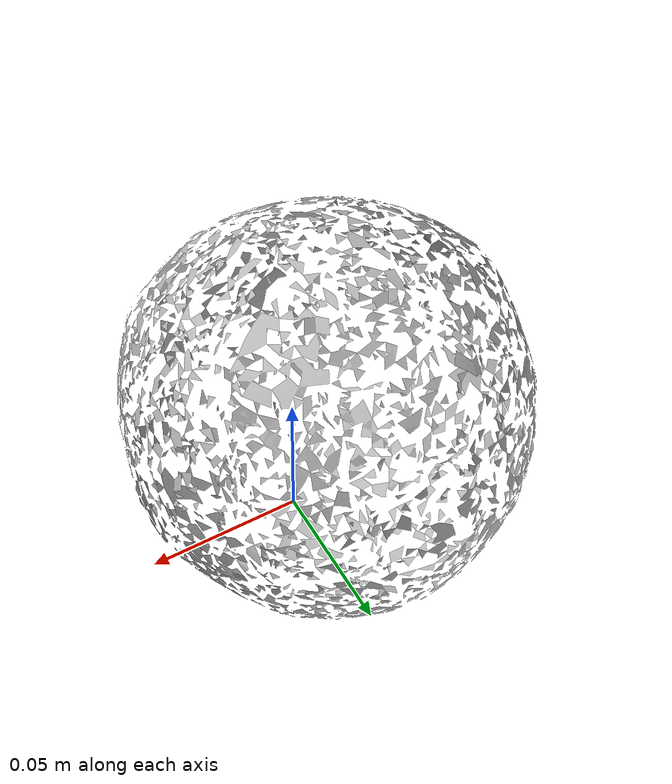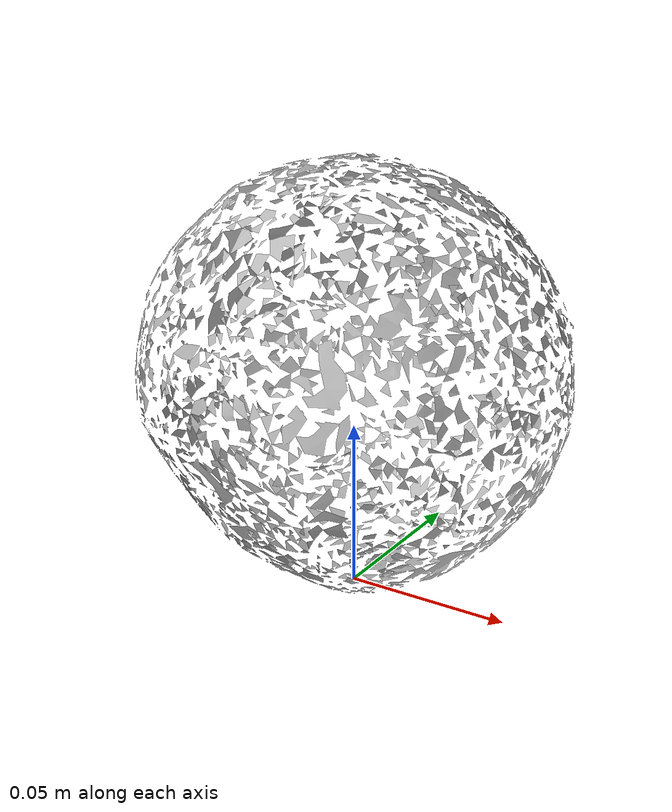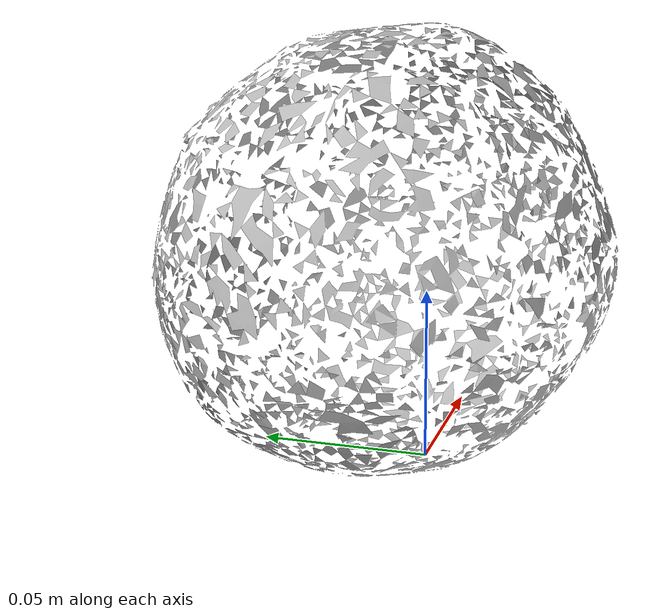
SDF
<?xml version='1.0'?>
<sdf version="1.4">
  <model name="mini_soccer_ball">
    <static>false</static>
    <link name="link">
      <inertial>
        <pose>-0.0059125914007175946 0.011530561800764411 0.06131555334762107 2.9532979512498687 0.7287431133262762 -2.1174877715257945</pose>
        <mass>0.0010465229343801772</mass>
        <inertia>
          <ixx>1.709206540462109e-06</ixx>
          <ixy>2.9727771330438613e-22</ixy>
          <ixz>-7.894662980534025e-23</ixz>
          <iyy>1.6540960125901477e-06</iyy>
          <iyz>-2.0899168628226547e-23</iyz>
          <izz>1.6272467028315052e-06</izz>
        </inertia>
      </inertial>
      <collision name="collision">
        <geometry>
          <mesh>
            <!-- Use a downsampled mesh for collisions -->
            <uri>model://053_mini_soccer_ball/downsampled.obj</uri>
	        </mesh>
        </geometry>
        <surface>
      </surface>
      </collision>
      <visual name="visual">
        <geometry>
          <mesh>
            <uri>model://053_mini_soccer_ball/google_16k/textured.obj</uri>
	        </mesh>
        </geometry>
        <material>
          <script>
            <uri>model://053_mini_soccer_ball/mini_soccer_ball.material</uri>
            <name>mini_soccer_ball</name>
          </script>
        </material>
      </visual>
    </link>
  </model>
</sdf>
